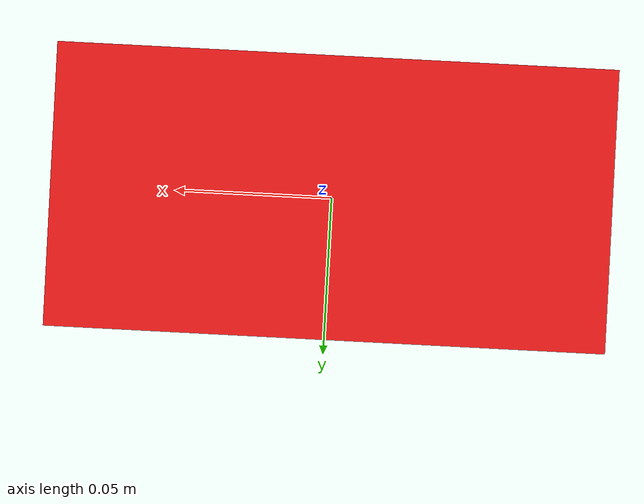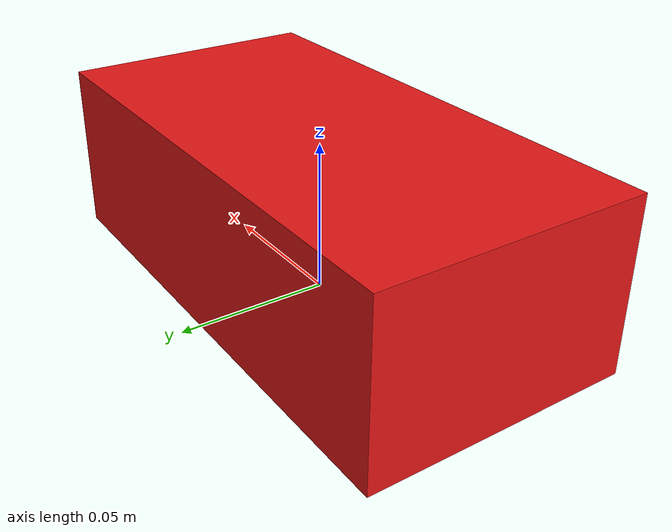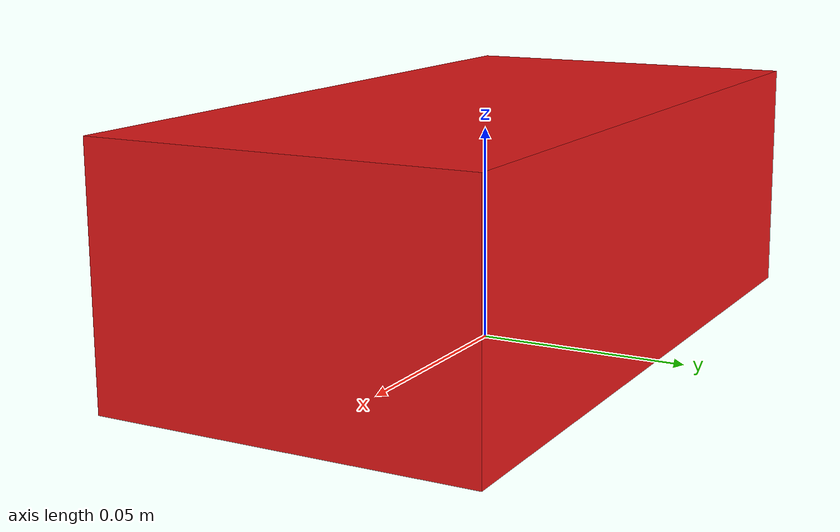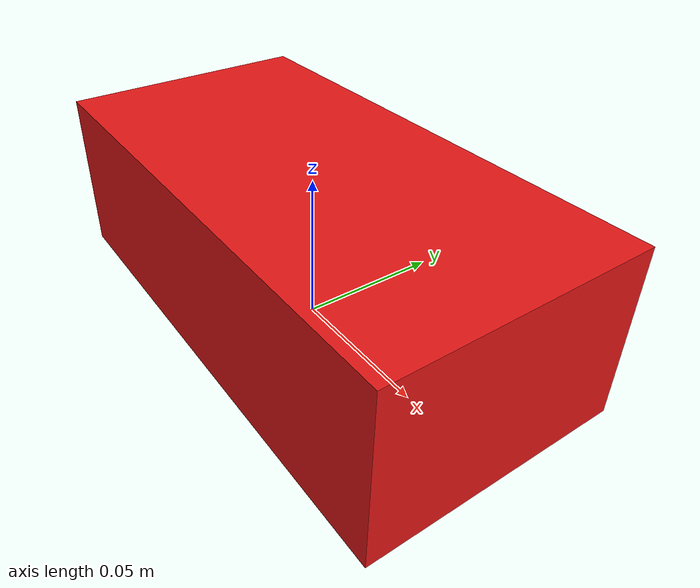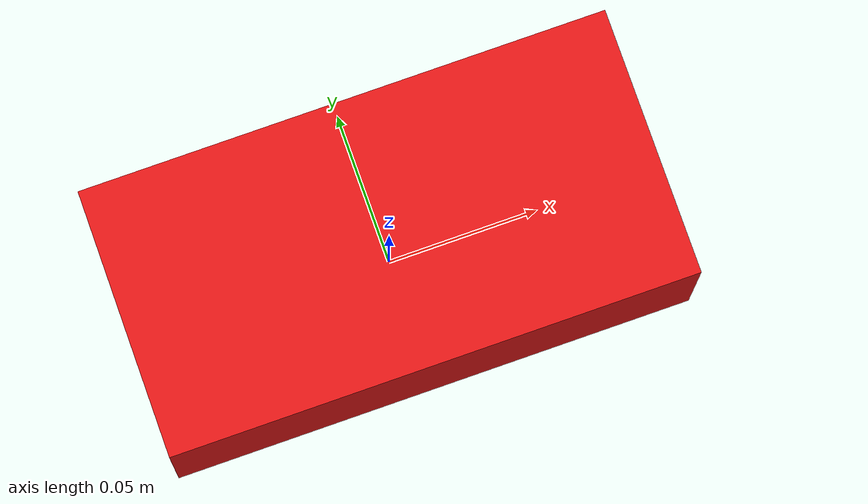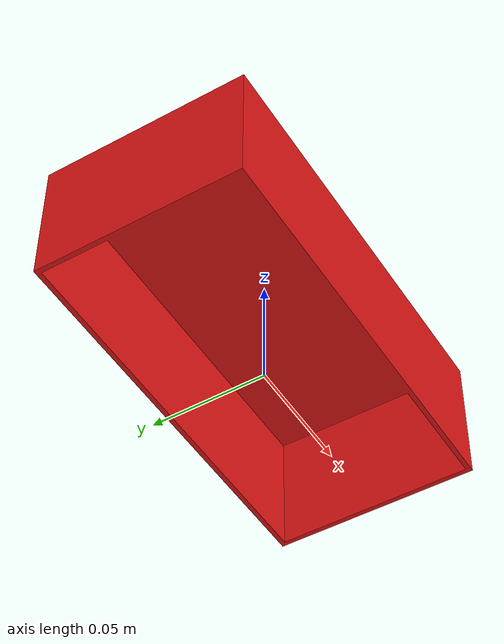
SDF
<?xml version="1.0" ?>
<sdf version="1.5">
  <model name='couverture'>
    <link name='couverture'>
      <pose frame=''>0 0 0.057 0 3.140187 0</pose>
      <inertial>
        <pose frame=''>0 0 0.0285 0 0 0</pose>
        <mass>0.01142950</mass>
        <inertia>
          <ixx>0.00001277250366</ixx>
          <ixy>0</ixy>
          <ixz>0</ixz>
          <iyy>0.00003290099121</iyy>
          <iyz>0</iyz>
          <izz>0.00003967267822</izz>
        </inertia>
      </inertial>
      <collision name='couverture_collision'>
        <pose frame=''>0 0 0.0285 0 0 0</pose>
        <geometry>
          <box>
            <size>0.17200001 0.087 0.057</size>
          </box>
        </geometry>
        <surface>
          <friction>
            <ode>
              <mu>1000</mu>
              <mu2>500</mu2>
              <fdir1>0 0 1</fdir1>
              <slip1>0.0</slip1>
              <slip2>0.0</slip2>
            </ode>
          </friction>
          <contact>
            <ode>
              <kp>100000.000000</kp>
              <kd>10.00000</kd>
              <max_vel>2.000000</max_vel>
              <min_depth>0.0001</min_depth>
            </ode>
          </contact>
        </surface>
      </collision>
      <visual name='couverture_visual'>
        <pose frame=''>0 0 0 0 -0 0</pose>
        <geometry>
          <mesh>
            <scale>0.01 0.01 0.01</scale>
            <uri>/home/rhosane/.gazebo/models/couverture/meshes/couverture.stl</uri>
          </mesh>
        </geometry>
        <material>
          <ambient>0.9 0.09 0.09 1</ambient>
          <diffuse>0.9 0.09 0.09 1</diffuse>
          <specular>0 0 0 1</specular>
          <emissive>0.1 0.1 0.1 1</emissive>
        </material>
      </visual>
    </link>
  </model>
</sdf>
